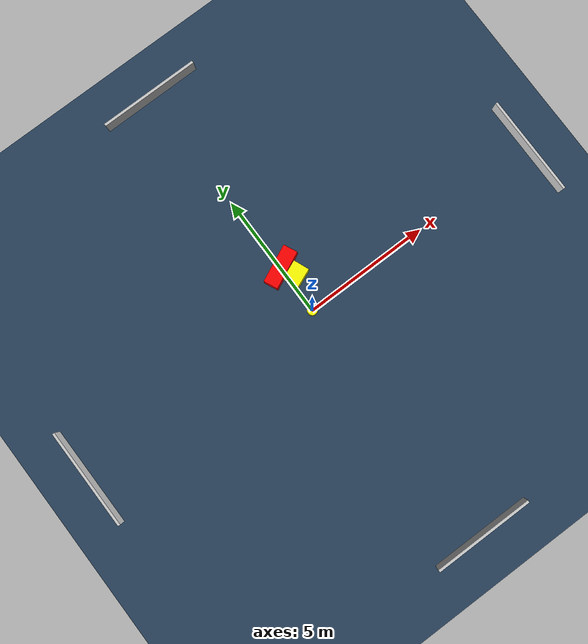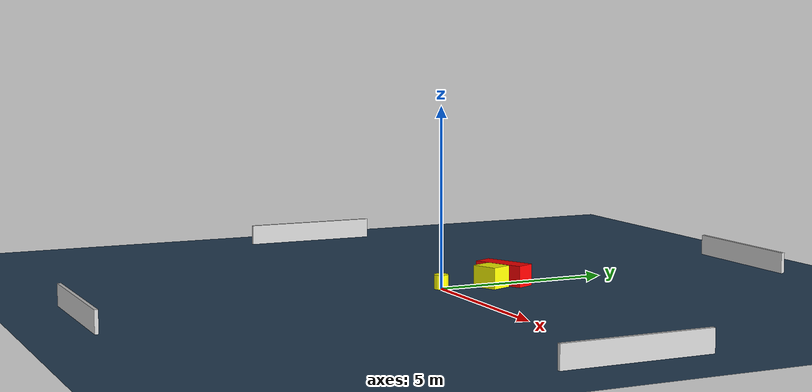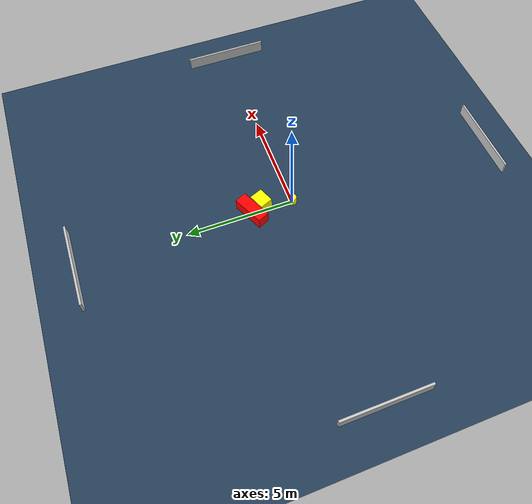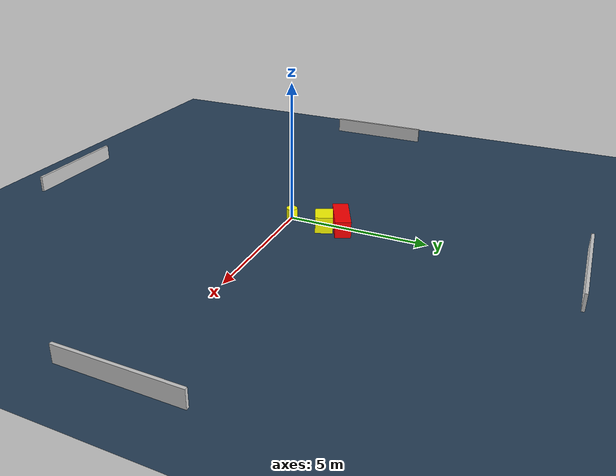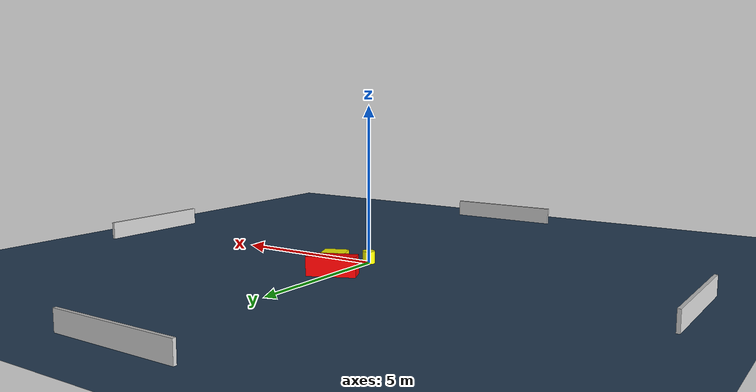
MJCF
<?xml version="1.0" ?>
<mujoco model="generated_environment">
  <option timestep="0.01" integrator="RK4" cone="elliptic"/>
  <default>
    <geom density="1"/>
  </default>
  <asset>
    <texture builtin="gradient" height="3072" name="skybox" rgb1="0.3 0.5 0.7" rgb2="0 0 0" type="skybox" width="512"/>
    <texture builtin="checker" height="300" name="groundplane" rgb1="0.2 0.3 0.4" rgb2="0.1 0.2 0.3" type="2d" width="300"/>
    <material name="groundplane" reflectance="0.2" texrepeat="5 5" texture="groundplane"/>
  </asset>
  <worldbody>
    <light dir="0 0 -1" directional="true" pos="0 0 1.5"/>
    <geom condim="3" friction="0.5 0.005 0.001" material="groundplane" name="floor" pos="0 0 0" size="0 0 0.05" type="plane"/>
    <body name="walls">
      <geom name="wall_1" condim="4" pos="-10.0 0.0 0.3" rgba="0.800000011920929 0.800000011920929 0.800000011920929 1.0" size="0.05 2.0 0.3" type="box"/>
      <geom name="wall_2" condim="4" pos="10.0 0.0 0.3" rgba="0.800000011920929 0.800000011920929 0.800000011920929 1.0" size="0.05 2.0 0.3" type="box"/>
      <geom name="wall_3" condim="4" pos="0.0 -10.0 0.3" rgba="0.800000011920929 0.800000011920929 0.800000011920929 1.0" size="2.0 0.05 0.3" type="box"/>
      <geom name="wall_4" condim="4" pos="0.0 10.0 0.3" rgba="0.800000011920929 0.800000011920929 0.800000011920929 1.0" size="2.0 0.05 0.3" type="box"/>
    </body>
    <body name="robot">
      <joint name="joint_x" type="slide" pos="0 0 0" axis="1 0 0"/>
      <joint name="joint_y" type="slide" pos="0 0 0" axis="0 1 0"/>
      <geom name="robot" type="cylinder" pos="0.0 0.0 0.2" size="0.2 0.2 0.0" mass="5.0" friction="1.0 0.005 0.0001" condim="4" rgba="1.0 1.0 0.0 1.0"/>
    </body>
    <body name="obstacle_1_movable">
      <geom name="obstacle_1_movable" condim="4" pos="0.3104461493181393 1.3863419738652665 0.3" euler="0 0 202.04470590225165" friction="0.0 0.005 0.001" rgba="1.0 1.0 0.0 1.0" size="0.37559570708380463 0.31261638561357585 0.3" type="box" mass="0.1"/>
      <joint type="free"/>
    </body>
    <body name="obstacle_2_static">
      <geom name="obstacle_2_static" condim="4" pos="0.013723434077099639 1.9277724832282703 0.3" euler="0 0 24.778691710164363" friction="0.0 0.005 0.001" rgba="1.0 0.0 0.0 1.0" size="0.7600227185646147 0.28119106335296584 0.3" type="box"/>
    </body>
  </worldbody>
  <actuator>
    <motor name="actuator_x" joint="joint_x" gear="1" ctrlrange="-1 1"/>
    <motor name="actuator_y" joint="joint_y" gear="1" ctrlrange="-1 1"/>
  </actuator>
</mujoco>
